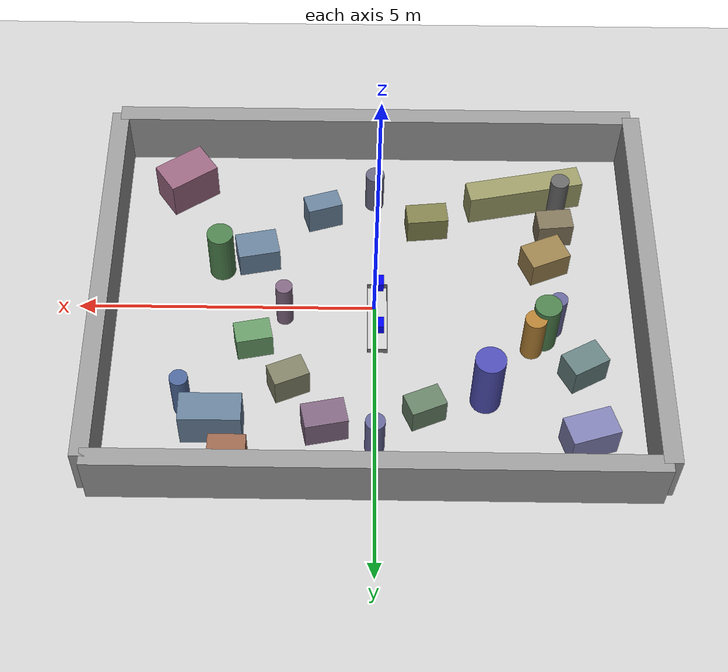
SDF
<?xml version="1.0" ?>
<sdf version="1.8">
  <world name="empty_world">

    <!-- 기본 Ignition 시스템 -->
    <plugin
      filename="gz-sim-physics-system"
      name="gz::sim::systems::Physics">
    </plugin>

    <plugin
      filename="gz-sim-user-commands-system"
      name="gz::sim::systems::UserCommands">
    </plugin>

    <plugin
      filename="gz-sim-scene-broadcaster-system"
      name="gz::sim::systems::SceneBroadcaster">
    </plugin>

    <plugin
      filename="gz-sim-sensors-system"
      name="gz::sim::systems::Sensors">
    </plugin>

    <plugin
      filename="gz-sim-contact-system"
      name="gz::sim::systems::Contact">
    </plugin>

    <!-- 물리 스텝 완화: 충돌 정확도는 약간 낮추고 RTF 개선을 위해 스텝을 키움 -->
    <physics name="fast_1ms" type="ode">
      <max_step_size>0.001</max_step_size>
      <real_time_update_rate>0</real_time_update_rate> <!-- 제한 해제 -->
      <max_contacts>2</max_contacts>
      <solver>
        <iterations>20</iterations>
        <sor>1.3</sor>
      </solver>
    </physics>

    <scene>
      <shadows>false</shadows>
      <grid>true</grid>
      <origin_visual>false</origin_visual>
    </scene>

    <light type="directional" name="sun">
      <cast_shadows>false</cast_shadows>
      <pose>0 0 10 0 0 0</pose>
      <diffuse>0.8 0.8 0.8 1</diffuse>
      <specular>0.2 0.2 0.2 1</specular>
      <attenuation>
        <range>1000</range>
        <constant>0.9</constant>
        <linear>0.01</linear>
        <quadratic>0.001</quadratic>
      </attenuation>
      <direction>-0.5 0.1 -0.9</direction>
    </light>

    <model name="ground_plane">
      <static>true</static>
      <link name="link">
        <collision name="collision">
          <geometry>
            <plane><normal>0 0 1</normal><size>100 100</size></plane>
          </geometry>
        </collision>

        <visual name="visual">
          <geometry>
            <plane><normal>0 0 1</normal><size>100 100</size></plane>
          </geometry>
          <material>
            <ambient>0.8 0.8 0.8 1</ambient>
            <diffuse>0.8 0.8 0.8 1</diffuse>
          </material>
        </visual>
      </link>
    </model>

    <!-- 직사각형 공간을 두르는 벽 (내측 대략 8.7m x 6.7m) -->
    <model name="perimeter_walls">
      <static>true</static>
      <pose>0 0 0 0 0 0</pose>
      <link name="north_wall">
        <pose>0 3.5 0.5 0 0 0</pose>
        <collision name="collision">
          <geometry><box><size>9.0 0.3 1.0</size></box></geometry>
        </collision>
        <visual name="visual">
          <geometry><box><size>9.0 0.3 1.0</size></box></geometry>
          <material><ambient>0.6 0.6 0.6 1</ambient><diffuse>0.6 0.6 0.6 1</diffuse></material>
        </visual>
      </link>
      <link name="south_wall">
        <pose>0 -3.5 0.5 0 0 0</pose>
        <collision name="collision">
          <geometry><box><size>9.0 0.3 1.0</size></box></geometry>
        </collision>
        <visual name="visual">
          <geometry><box><size>9.0 0.3 1.0</size></box></geometry>
          <material><ambient>0.6 0.6 0.6 1</ambient><diffuse>0.6 0.6 0.6 1</diffuse></material>
        </visual>
      </link>
      <link name="west_wall">
        <pose>-4.5 0 0.5 0 0 0</pose>
        <collision name="collision">
          <geometry><box><size>0.3 7.0 1.0</size></box></geometry>
        </collision>
        <visual name="visual">
          <geometry><box><size>0.3 7.0 1.0</size></box></geometry>
          <material><ambient>0.6 0.6 0.6 1</ambient><diffuse>0.6 0.6 0.6 1</diffuse></material>
        </visual>
      </link>
      <link name="east_wall">
        <pose>4.5 0 0.5 0 0 0</pose>
        <collision name="collision">
          <geometry><box><size>0.3 7.0 1.0</size></box></geometry>
        </collision>
        <visual name="visual">
          <geometry><box><size>0.3 7.0 1.0</size></box></geometry>
          <material><ambient>0.6 0.6 0.6 1</ambient><diffuse>0.6 0.6 0.6 1</diffuse></material>
        </visual>
      </link>
    </model>

    <!-- 불규칙 장애물 몇 개 배치 -->
    <model name="box_cluster">
      <static>true</static>
      <pose>2.6 2.4 0.35 0 0 0</pose>
      <link name="box1">
        <collision name="collision"><geometry><box><size>1.0 0.5 0.7</size></box></geometry></collision>
        <visual name="visual">
          <geometry><box><size>1.0 0.5 0.7</size></box></geometry>
          <material><ambient>0.4 0.5 0.6 1</ambient><diffuse>0.4 0.5 0.6 1</diffuse></material>
        </visual>
      </link>
      <link name="box2">
        <pose>-0.3 0.8 -0.1 0 0 0</pose>
        <collision name="collision"><geometry><box><size>0.6 0.6 0.9</size></box></geometry></collision>
        <visual name="visual">
          <geometry><box><size>0.6 0.6 0.9</size></box></geometry>
          <material><ambient>0.6 0.4 0.3 1</ambient><diffuse>0.6 0.4 0.3 1</diffuse></material>
        </visual>
      </link>
    </model>

    <model name="pillar_pair">
      <static>true</static>
      <pose>-1.8 1.8 0 0 0 0</pose>
      <link name="pillar1">
        <pose>0 0 0.6 0 0 0</pose>
        <collision name="collision"><geometry><cylinder><radius>0.25</radius><length>1.2</length></cylinder></geometry></collision>
        <visual name="visual">
          <geometry><cylinder><radius>0.25</radius><length>1.2</length></cylinder></geometry>
          <material><ambient>0.3 0.3 0.7 1</ambient><diffuse>0.3 0.3 0.7 1</diffuse></material>
        </visual>
      </link>
      <link name="pillar2">
        <pose>-0.8 -1.0 0.45 0 0 0</pose>
        <collision name="collision"><geometry><cylinder><radius>0.18</radius><length>0.9</length></cylinder></geometry></collision>
        <visual name="visual">
          <geometry><cylinder><radius>0.18</radius><length>0.9</length></cylinder></geometry>
          <material><ambient>0.7 0.5 0.2 1</ambient><diffuse>0.7 0.5 0.2 1</diffuse></material>
        </visual>
      </link>
    </model>

    <model name="short_barrier">
      <static>true</static>
      <pose>-2.6 -2.3 0.3 0 0 0.2</pose>
      <link name="link">
        <collision name="collision"><geometry><box><size>2.0 0.4 0.6</size></box></geometry></collision>
        <visual name="visual">
          <geometry><box><size>2.0 0.4 0.6</size></box></geometry>
          <material><ambient>0.6 0.6 0.4 1</ambient><diffuse>0.6 0.6 0.4 1</diffuse></material>
        </visual>
      </link>
    </model>

    <!-- 추가 장애물 -->
    <model name="side_pillars">
      <static>true</static>
      <pose>0 0 0 0 0 0</pose>
      <link name="pillar_left">
        <pose>-2.8 0.6 0.5 0 0 0</pose>
        <collision name="collision"><geometry><cylinder><radius>0.22</radius><length>1.0</length></cylinder></geometry></collision>
        <visual name="visual">
          <geometry><cylinder><radius>0.22</radius><length>1.0</length></cylinder></geometry>
          <material><ambient>0.3 0.5 0.3 1</ambient><diffuse>0.3 0.5 0.3 1</diffuse></material>
        </visual>
      </link>
      <link name="pillar_right">
        <pose>2.6 -0.8 0.5 0 0 0</pose>
        <collision name="collision"><geometry><cylinder><radius>0.22</radius><length>1.0</length></cylinder></geometry></collision>
        <visual name="visual">
          <geometry><cylinder><radius>0.22</radius><length>1.0</length></cylinder></geometry>
          <material><ambient>0.3 0.5 0.3 1</ambient><diffuse>0.3 0.5 0.3 1</diffuse></material>
        </visual>
      </link>
    </model>

    <model name="narrow_fill_1">
      <static>true</static>
      <pose>-0.9 -1.7 0.25 0 0 0.1</pose>
      <link name="link">
        <collision name="collision"><geometry><box><size>0.7 0.4 0.5</size></box></geometry></collision>
        <visual name="visual">
          <geometry><box><size>0.7 0.4 0.5</size></box></geometry>
          <material><ambient>0.5 0.5 0.3 1</ambient><diffuse>0.5 0.5 0.3 1</diffuse></material>
        </visual>
      </link>
    </model>

    <model name="narrow_fill_2">
      <static>true</static>
      <pose>0.9 -1.9 0.28 0 0 0.3</pose>
      <link name="link">
        <collision name="collision"><geometry><box><size>0.6 0.35 0.55</size></box></geometry></collision>
        <visual name="visual">
          <geometry><box><size>0.6 0.35 0.55</size></box></geometry>
          <material><ambient>0.4 0.5 0.6 1</ambient><diffuse>0.4 0.5 0.6 1</diffuse></material>
        </visual>
      </link>
    </model>

    <model name="narrow_pillar">
      <static>true</static>
      <pose>0.0 -2.3 0.4 0 0 0</pose>
      <link name="link">
        <collision name="collision"><geometry><cylinder><radius>0.16</radius><length>0.8</length></cylinder></geometry></collision>
        <visual name="visual">
          <geometry><cylinder><radius>0.16</radius><length>0.8</length></cylinder></geometry>
          <material><ambient>0.4 0.4 0.5 1</ambient><diffuse>0.4 0.4 0.5 1</diffuse></material>
        </visual>
      </link>
    </model>

    <!-- 내부 사각형 벽 -->
    <model name="inner_rectangle_walls">
      <static>true</static>
      <pose>0 0 0 0 0 0</pose>
      <link name="inner_north_wall">
        <pose>-0.05 0.88 0.05 0 0 0</pose>
        <collision name="collision">
          <geometry><box><size>0.33 0.01 0.1</size></box></geometry>
        </collision>
        <visual name="visual">
          <geometry><box><size>0.33 0.01 0.1</size></box></geometry>
          <material><ambient>0.5 0.5 0.5 1</ambient><diffuse>0.5 0.5 0.5 1</diffuse></material>
        </visual>
      </link>
      <link name="inner_south_wall">
        <pose>-0.05 -0.45 0.05 0 0 0</pose>
        <collision name="collision">
          <geometry><box><size>0.33 0.01 0.1</size></box></geometry>
        </collision>
        <visual name="visual">
          <geometry><box><size>0.33 0.01 0.1</size></box></geometry>
          <material><ambient>0.5 0.5 0.5 1</ambient><diffuse>0.5 0.5 0.5 1</diffuse></material>
        </visual>
      </link>
      <link name="inner_west_wall">
        <pose>-0.215 0.215 0.05 0 0 0</pose>
        <collision name="collision">
          <geometry><box><size>0.01 1.33 0.1</size></box></geometry>
        </collision>
        <visual name="visual">
          <geometry><box><size>0.01 1.33 0.1</size></box></geometry>
          <material><ambient>0.5 0.5 0.5 1</ambient><diffuse>0.5 0.5 0.5 1</diffuse></material>
        </visual>
      </link>
      <link name="inner_east_wall">
        <pose>0.115 0.215 0.05 0 0 0</pose>
        <collision name="collision">
          <geometry><box><size>0.01 1.33 0.1</size></box></geometry>
        </collision>
        <visual name="visual">
          <geometry><box><size>0.01 1.33 0.1</size></box></geometry>
          <material><ambient>0.5 0.5 0.5 1</ambient><diffuse>0.5 0.5 0.5 1</diffuse></material>
        </visual>
      </link>
    </model>

    <!-- 주변부 장애물 (중앙 스폰 구역은 비워둠) -->
    <model name="corner_box_1">
      <static>true</static>
      <pose>-3.4 2.6 0.3 0 0 0.3</pose>
      <link name="link">
        <collision name="collision"><geometry><box><size>0.8 0.5 0.6</size></box></geometry></collision>
        <visual name="visual">
          <geometry><box><size>0.8 0.5 0.6</size></box></geometry>
          <material><ambient>0.5 0.5 0.7 1</ambient><diffuse>0.5 0.5 0.7 1</diffuse></material>
        </visual>
      </link>
    </model>

    <model name="corner_box_2">
      <static>true</static>
      <pose>3.3 -2.5 0.35 0 0 0.6</pose>
      <link name="link">
        <collision name="collision"><geometry><box><size>0.9 0.6 0.7</size></box></geometry></collision>
        <visual name="visual">
          <geometry><box><size>0.9 0.6 0.7</size></box></geometry>
          <material><ambient>0.6 0.4 0.5 1</ambient><diffuse>0.6 0.4 0.5 1</diffuse></material>
        </visual>
      </link>
    </model>

    <model name="opposite_fill_1">
      <static>true</static>
      <pose>0.8 2.4 0.28 0 0 0.2</pose>
      <link name="link">
        <collision name="collision"><geometry><box><size>0.7 0.45 0.55</size></box></geometry></collision>
        <visual name="visual">
          <geometry><box><size>0.7 0.45 0.55</size></box></geometry>
          <material><ambient>0.5 0.4 0.5 1</ambient><diffuse>0.5 0.4 0.5 1</diffuse></material>
        </visual>
      </link>
    </model>

    <model name="opposite_fill_2">
      <static>true</static>
      <pose>-0.8 2.1 0.25 0 0 0.4</pose>
      <link name="link">
        <collision name="collision"><geometry><box><size>0.6 0.4 0.5</size></box></geometry></collision>
        <visual name="visual">
          <geometry><box><size>0.6 0.4 0.5</size></box></geometry>
          <material><ambient>0.4 0.5 0.4 1</ambient><diffuse>0.4 0.5 0.4 1</diffuse></material>
        </visual>
      </link>
    </model>

    <model name="opposite_pillar">
      <static>true</static>
      <pose>0.0 2.7 0.4 0 0 0</pose>
      <link name="link">
        <collision name="collision"><geometry><cylinder><radius>0.16</radius><length>0.8</length></cylinder></geometry></collision>
        <visual name="visual">
          <geometry><cylinder><radius>0.16</radius><length>0.8</length></cylinder></geometry>
          <material><ambient>0.4 0.4 0.6 1</ambient><diffuse>0.4 0.4 0.6 1</diffuse></material>
        </visual>
      </link>
    </model>

    <model name="mid_box_1">
      <static>true</static>
      <pose>2.0 0.8 0.25 0 0 0.2</pose>
      <link name="link">
        <collision name="collision"><geometry><box><size>0.6 0.4 0.5</size></box></geometry></collision>
        <visual name="visual">
          <geometry><box><size>0.6 0.4 0.5</size></box></geometry>
          <material><ambient>0.4 0.6 0.4 1</ambient><diffuse>0.4 0.6 0.4 1</diffuse></material>
        </visual>
      </link>
    </model>

    <model name="mid_box_2">
      <static>true</static>
      <pose>-2.9 -0.9 0.25 0 0 0.4</pose>
      <link name="link">
        <collision name="collision"><geometry><box><size>0.7 0.5 0.5</size></box></geometry></collision>
        <visual name="visual">
          <geometry><box><size>0.7 0.5 0.5</size></box></geometry>
          <material><ambient>0.6 0.5 0.3 1</ambient><diffuse>0.6 0.5 0.3 1</diffuse></material>
        </visual>
      </link>
    </model>

    <model name="right_box_1">
      <static>true</static>
      <pose>1.4 1.6 0.28 0 0 0.4</pose>
      <link name="link">
        <collision name="collision"><geometry><box><size>0.6 0.4 0.55</size></box></geometry></collision>
        <visual name="visual">
          <geometry><box><size>0.6 0.4 0.55</size></box></geometry>
          <material><ambient>0.5 0.5 0.4 1</ambient><diffuse>0.5 0.5 0.4 1</diffuse></material>
        </visual>
      </link>
    </model>

    <model name="right_box_2">
      <static>true</static>
      <pose>2 -1.0 0.25 0 0 0.2</pose>
      <link name="link">
        <collision name="collision"><geometry><box><size>0.7 0.5 0.5</size></box></geometry></collision>
        <visual name="visual">
          <geometry><box><size>0.7 0.5 0.5</size></box></geometry>
          <material><ambient>0.4 0.5 0.6 1</ambient><diffuse>0.4 0.5 0.6 1</diffuse></material>
        </visual>
      </link>
    </model>

    <model name="right_pillar">
      <static>true</static>
      <pose>1.5 0.2 0.45 0 0 0</pose>
      <link name="link">
        <collision name="collision"><geometry><cylinder><radius>0.14</radius><length>0.9</length></cylinder></geometry></collision>
        <visual name="visual">
          <geometry><cylinder><radius>0.14</radius><length>0.9</length></cylinder></geometry>
          <material><ambient>0.5 0.4 0.5 1</ambient><diffuse>0.5 0.4 0.5 1</diffuse></material>
        </visual>
      </link>
    </model>

    <model name="left_box_1">
      <static>true</static>
      <pose>-3.4 1.3 0.28 0 0 0.5</pose>
      <link name="link">
        <collision name="collision"><geometry><box><size>0.65 0.45 0.55</size></box></geometry></collision>
        <visual name="visual">
          <geometry><box><size>0.65 0.45 0.55</size></box></geometry>
          <material><ambient>0.4 0.5 0.5 1</ambient><diffuse>0.4 0.5 0.5 1</diffuse></material>
        </visual>
      </link>
    </model>

    <model name="left_box_2">
      <static>true</static>
      <pose>-3.1 -1.6 0.25 0 0 0.1</pose>
      <link name="link">
        <collision name="collision"><geometry><box><size>0.6 0.4 0.5</size></box></geometry></collision>
        <visual name="visual">
          <geometry><box><size>0.6 0.4 0.5</size></box></geometry>
          <material><ambient>0.5 0.45 0.35 1</ambient><diffuse>0.5 0.45 0.35 1</diffuse></material>
        </visual>
      </link>
    </model>

    <model name="left_pillar">
      <static>true</static>
      <pose>-3.0 0.4 0.45 0 0 0</pose>
      <link name="link">
        <collision name="collision"><geometry><cylinder><radius>0.14</radius><length>0.9</length></cylinder></geometry></collision>
        <visual name="visual">
          <geometry><cylinder><radius>0.14</radius><length>0.9</length></cylinder></geometry>
          <material><ambient>0.4 0.4 0.6 1</ambient><diffuse>0.4 0.4 0.6 1</diffuse></material>
        </visual>
      </link>
    </model>

    <model name="small_pillar_1">
      <static>true</static>
      <pose>3.1 2.0 0.45 0 0 0</pose>
      <link name="link">
        <collision name="collision"><geometry><cylinder><radius>0.15</radius><length>0.9</length></cylinder></geometry></collision>
        <visual name="visual">
          <geometry><cylinder><radius>0.15</radius><length>0.9</length></cylinder></geometry>
          <material><ambient>0.3 0.4 0.6 1</ambient><diffuse>0.3 0.4 0.6 1</diffuse></material>
        </visual>
      </link>
    </model>

    <model name="small_pillar_2">
      <static>true</static>
      <pose>-3.2 -2.2 0.4 0 0 0</pose>
      <link name="link">
        <collision name="collision"><geometry><cylinder><radius>0.16</radius><length>0.8</length></cylinder></geometry></collision>
        <visual name="visual">
          <geometry><cylinder><radius>0.16</radius><length>0.8</length></cylinder></geometry>
          <material><ambient>0.4 0.4 0.4 1</ambient><diffuse>0.4 0.4 0.4 1</diffuse></material>
        </visual>
      </link>
    </model>

    <!--                    Top-Down CCTV Cameras                  -->

    <!-- Camera 1: 요청한 pose, topic = top_camera_1/image -->
    <model name="top_camera_1">
    <!-- 월드 기준에서 카메라 위치/자세: z=0.5m, 아래(-pi/2 rad)로 내려다봄 -->
    <pose>-0.05 -0.2657 0.386 -1.6265 1.5249 -1.6198</pose>
    <static>true</static>

    <link name="camera_link">
      <pose>0 0 0 0 0 0</pose>

      <!-- 카메라 본체 시각화용 파란 박스 -->
      <visual name="camera_visual">
        <geometry>
          <box>
            <size>0.2 0.2 0.2</size>
          </box>
        </geometry>
        <material>
          <ambient>0 0 1 1</ambient>
          <diffuse>0 0 1 1</diffuse>
        </material>
      </visual>

      <!-- 실제 카메라 센서 -->
      <sensor name="top_camera_sensor" type="camera">
        <pose>0 0 0 0 0 0</pose>
        <always_on>true</always_on>
        <update_rate>30</update_rate>

        <camera>
          <horizontal_fov>1.2</horizontal_fov>
          <image>
            <width>640</width>
            <height>480</height>
            <format>R8G8B8</format>
          </image>
          <clip>
            <near>0.05</near>
            <far>50.0</far>
          </clip>
        </camera>

          <!-- Ignition/Gazebo transport 상의 센서 토픽 힌트 -->
        <topic>top_camera_1/image</topic>
      </sensor>
      </link>
    </model>

    <model name="top_camera_2">
    <!-- 월드 기준에서 카메라 위치/자세: z=0.5m, 아래(-pi/2 rad)로 내려다봄 -->
    <pose>-0.05 0.5939 0.386 -1.6265 1.5249 -1.6198</pose>
    <static>true</static>

    <link name="camera_link">
      <pose>0 0 0 0 0 0</pose>

      <!-- 카메라 본체 시각화용 파란 박스 -->
      <visual name="camera_visual">
        <geometry>
          <box>
            <size>0.2 0.2 0.2</size>
          </box>
        </geometry>
        <material>
          <ambient>0 0 1 1</ambient>
          <diffuse>0 0 1 1</diffuse>
        </material>
      </visual>

      <!-- 실제 카메라 센서 -->
      <sensor name="top_camera_2_sensor" type="camera">
        <pose>0 0 0 0 0 0</pose>
        <always_on>true</always_on>
        <update_rate>30</update_rate>

        <camera>
          <horizontal_fov>1.2</horizontal_fov>
          <image>
            <width>640</width>
            <height>480</height>
            <format>R8G8B8</format>
          </image>
          <clip>
            <near>0.05</near>
            <far>50.0</far>
          </clip>
        </camera>

          <!-- Ignition/Gazebo transport 상의 센서 토픽 힌트 -->
        <topic>top_camera_2/image</topic>
      </sensor>
      </link>
    </model>
  </world>
</sdf>
